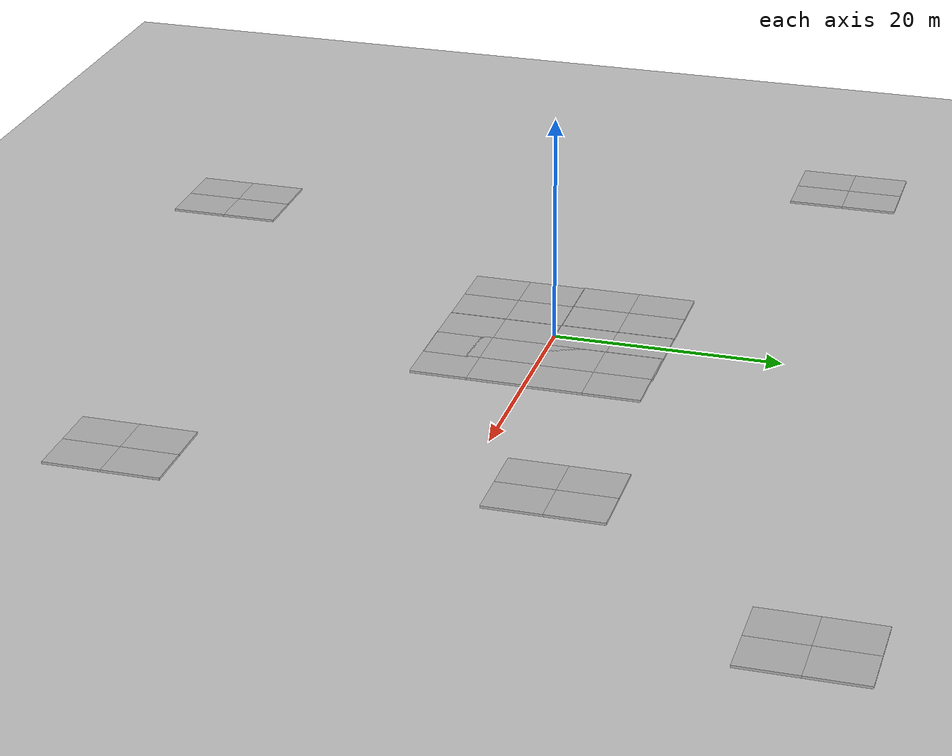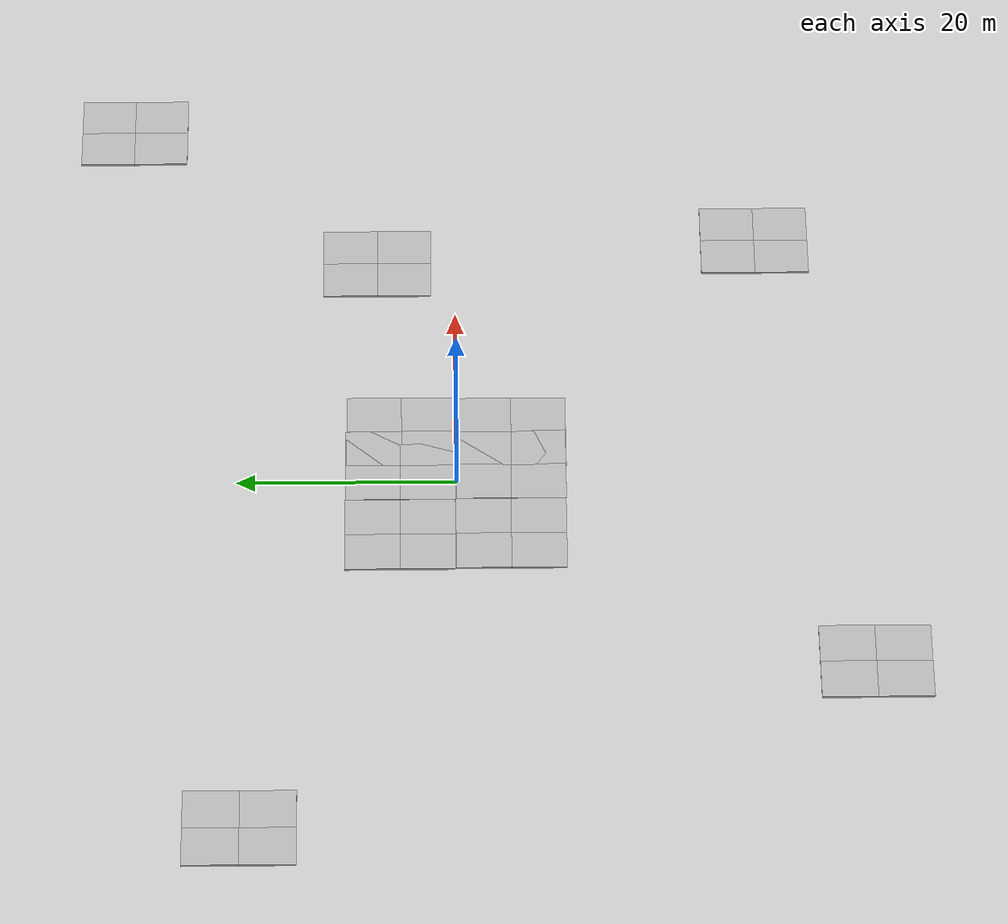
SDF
<sdf version="1.6">
 <world name="default">
  <light name="sun" type="directional">
   <pose>0 0 10 0 -0 0</pose>
   <diffuse>0.8 0.8 0.8 1</diffuse>
   <specular>0.2 0.2 0.2 1</specular>
   <attenuation>
    <range>1000</range>
    <constant>0.9</constant>
    <linear>0.01</linear>
    <quadratic>0.001</quadratic>
   </attenuation>
   <direction>-0.5 0.1 -0.9</direction>
  </light>
  <model name="ground_plane">
   <static>1</static>
   <link name="link">
    <collision name="collision">
     <geometry><plane><normal>0 0 1</normal><size>100 100</size></plane></geometry>
     <surface>
      <contact><collide_bitmask>65535</collide_bitmask></contact>
      <friction><ode><mu>100</mu><mu2>50</mu2></ode></friction>
     </surface>
    </collision>
    <visual name="visual">
     <cast_shadows>0</cast_shadows>
     <geometry><plane><normal>0 0 1</normal><size>100 100</size></plane></geometry>
     <material>
      <script><uri>file://media/materials/scripts/gazebo.material</uri><name>Gazebo/Grey</name></script>
     </material>
    </visual>
   </link>
  </model>
  <gravity>0 0 -9.8</gravity>
  <magnetic_field>6e-06 2.3e-05 -4.2e-05</magnetic_field>
  <atmosphere type="adiabatic"/>
  <physics name="default_physics" default="0" type="ode">
   <max_step_size>0.001</max_step_size>
   <real_time_factor>1</real_time_factor>
   <real_time_update_rate>1000</real_time_update_rate>
  </physics>
  <scene><ambient>0.4 0.4 0.4 1</ambient><background>0.7 0.7 0.7 1</background><shadows>0</shadows></scene>
  <audio><device>default</device></audio>
  <spherical_coordinates>
   <surface_model>EARTH_WGS84</surface_model>
   <latitude_deg>0</latitude_deg>
   <longitude_deg>0</longitude_deg>
   <elevation>0</elevation>
   <heading_deg>0</heading_deg>
  </spherical_coordinates>
  <model name="mud_box">
   <static>1</static>
   <link name="link">
    <collision name="collision"><geometry><box><size>8 10 0.2</size></box></geometry></collision>
    <visual name="visual_1">
     <pose>-2 2.5 0 0 -0 0</pose>
     <cast_shadows>0</cast_shadows>
     <geometry><box><size>4 5 0.2</size></box></geometry>
     <material>
      <script>
       <uri>model://mud_box/materials/scripts</uri>
       <uri>model://mud_box/materials/textures</uri>
       <name>vrc/mud</name>
      </script>
     </material>
    </visual>
    <visual name="visual_2">
     <pose>2 2.5 0 0 -0 0</pose>
     <cast_shadows>0</cast_shadows>
     <geometry><box><size>4 5 0.2</size></box></geometry>
     <material>
      <script>
       <uri>model://mud_box/materials/scripts</uri>
       <uri>model://mud_box/materials/textures</uri>
       <name>vrc/mud</name>
      </script>
     </material>
    </visual>
    <visual name="visual_3">
     <pose>2 -2.5 0 0 -0 0</pose>
     <cast_shadows>0</cast_shadows>
     <geometry><box><size>4 5 0.2</size></box></geometry>
     <material>
      <script>
       <uri>model://mud_box/materials/scripts</uri>
       <uri>model://mud_box/materials/textures</uri>
       <name>vrc/mud</name>
      </script>
     </material>
    </visual>
    <visual name="visual_4">
     <pose>-2 -2.5 0 0 -0 0</pose>
     <cast_shadows>0</cast_shadows>
     <geometry><box><size>4 5 0.2</size></box></geometry>
     <material>
      <script>
       <uri>model://mud_box/materials/scripts</uri>
       <uri>model://mud_box/materials/textures</uri>
       <name>vrc/mud</name>
      </script>
     </material>
    </visual>
   </link>
   <pose>-6.03693 -4.88899 0 0 -0 0</pose>
  </model>
  <model name="mud_box_0">
   <static>1</static>
   <link name="link">
    <collision name="collision"><geometry><box><size>8 10 0.2</size></box></geometry></collision>
    <visual name="visual_1">
     <pose>-2 2.5 0 0 -0 0</pose>
     <cast_shadows>0</cast_shadows>
     <geometry><box><size>4 5 0.2</size></box></geometry>
     <material>
      <script>
       <uri>model://mud_box/materials/scripts</uri>
       <uri>model://mud_box/materials/textures</uri>
       <name>vrc/mud</name>
      </script>
     </material>
    </visual>
    <visual name="visual_2">
     <pose>2 2.5 0 0 -0 0</pose>
     <cast_shadows>0</cast_shadows>
     <geometry><box><size>4 5 0.2</size></box></geometry>
     <material>
      <script>
       <uri>model://mud_box/materials/scripts</uri>
       <uri>model://mud_box/materials/textures</uri>
       <name>vrc/mud</name>
      </script>
     </material>
    </visual>
    <visual name="visual_3">
     <pose>2 -2.5 0 0 -0 0</pose>
     <cast_shadows>0</cast_shadows>
     <geometry><box><size>4 5 0.2</size></box></geometry>
     <material>
      <script>
       <uri>model://mud_box/materials/scripts</uri>
       <uri>model://mud_box/materials/textures</uri>
       <name>vrc/mud</name>
      </script>
     </material>
    </visual>
    <visual name="visual_4">
     <pose>-2 -2.5 0 0 -0 0</pose>
     <cast_shadows>0</cast_shadows>
     <geometry><box><size>4 5 0.2</size></box></geometry>
     <material>
      <script>
       <uri>model://mud_box/materials/scripts</uri>
       <uri>model://mud_box/materials/textures</uri>
       <name>vrc/mud</name>
      </script>
     </material>
    </visual>
   </link>
   <pose>-6.12223 5.16155 0 0 -0 0</pose>
  </model>
  <model name="mud_box_1">
   <static>1</static>
   <link name="link">
    <collision name="collision"><geometry><box><size>8 10 0.2</size></box></geometry></collision>
    <visual name="visual_1">
     <pose>-2 2.5 0 0 -0 0</pose>
     <cast_shadows>0</cast_shadows>
     <geometry><box><size>4 5 0.2</size></box></geometry>
     <material>
      <script>
       <uri>model://mud_box/materials/scripts</uri>
       <uri>model://mud_box/materials/textures</uri>
       <name>vrc/mud</name>
      </script>
     </material>
    </visual>
    <visual name="visual_2">
     <pose>2 2.5 0 0 -0 0</pose>
     <cast_shadows>0</cast_shadows>
     <geometry><box><size>4 5 0.2</size></box></geometry>
     <material>
      <script>
       <uri>model://mud_box/materials/scripts</uri>
       <uri>model://mud_box/materials/textures</uri>
       <name>vrc/mud</name>
      </script>
     </material>
    </visual>
    <visual name="visual_3">
     <pose>2 -2.5 0 0 -0 0</pose>
     <cast_shadows>0</cast_shadows>
     <geometry><box><size>4 5 0.2</size></box></geometry>
     <material>
      <script>
       <uri>model://mud_box/materials/scripts</uri>
       <uri>model://mud_box/materials/textures</uri>
       <name>vrc/mud</name>
      </script>
     </material>
    </visual>
    <visual name="visual_4">
     <pose>-2 -2.5 0 0 -0 0</pose>
     <cast_shadows>0</cast_shadows>
     <geometry><box><size>4 5 0.2</size></box></geometry>
     <material>
      <script>
       <uri>model://mud_box/materials/scripts</uri>
       <uri>model://mud_box/materials/textures</uri>
       <name>vrc/mud</name>
      </script>
     </material>
    </visual>
   </link>
   <pose>2.00613 -4.9342 0 0 -0 0</pose>
  </model>
  <model name="mud_box_2">
   <static>1</static>
   <link name="link">
    <collision name="collision"><geometry><box><size>8 10 0.2</size></box></geometry></collision>
    <visual name="visual_1">
     <pose>-2 2.5 0 0 -0 0</pose>
     <cast_shadows>0</cast_shadows>
     <geometry><box><size>4 5 0.2</size></box></geometry>
     <material>
      <script>
       <uri>model://mud_box/materials/scripts</uri>
       <uri>model://mud_box/materials/textures</uri>
       <name>vrc/mud</name>
      </script>
     </material>
    </visual>
    <visual name="visual_2">
     <pose>2 2.5 0 0 -0 0</pose>
     <cast_shadows>0</cast_shadows>
     <geometry><box><size>4 5 0.2</size></box></geometry>
     <material>
      <script>
       <uri>model://mud_box/materials/scripts</uri>
       <uri>model://mud_box/materials/textures</uri>
       <name>vrc/mud</name>
      </script>
     </material>
    </visual>
    <visual name="visual_3">
     <pose>2 -2.5 0 0 -0 0</pose>
     <cast_shadows>0</cast_shadows>
     <geometry><box><size>4 5 0.2</size></box></geometry>
     <material>
      <script>
       <uri>model://mud_box/materials/scripts</uri>
       <uri>model://mud_box/materials/textures</uri>
       <name>vrc/mud</name>
      </script>
     </material>
    </visual>
    <visual name="visual_4">
     <pose>-2 -2.5 0 0 -0 0</pose>
     <cast_shadows>0</cast_shadows>
     <geometry><box><size>4 5 0.2</size></box></geometry>
     <material>
      <script>
       <uri>model://mud_box/materials/scripts</uri>
       <uri>model://mud_box/materials/textures</uri>
       <name>vrc/mud</name>
      </script>
     </material>
    </visual>
   </link>
   <pose>1.92188 5.12437 0 0 -0 0</pose>
  </model>
  <model name="mud_box_4">
   <static>1</static>
   <link name="link">
    <collision name="collision"><geometry><box><size>8 10 0.2</size></box></geometry></collision>
    <visual name="visual_1">
     <pose>-2 2.5 0 0 -0 0</pose>
     <cast_shadows>0</cast_shadows>
     <geometry><box><size>4 5 0.2</size></box></geometry>
     <material>
      <script>
       <uri>model://mud_box/materials/scripts</uri>
       <uri>model://mud_box/materials/textures</uri>
       <name>vrc/mud</name>
      </script>
     </material>
    </visual>
    <visual name="visual_2">
     <pose>2 2.5 0 0 -0 0</pose>
     <cast_shadows>0</cast_shadows>
     <geometry><box><size>4 5 0.2</size></box></geometry>
     <material>
      <script>
       <uri>model://mud_box/materials/scripts</uri>
       <uri>model://mud_box/materials/textures</uri>
       <name>vrc/mud</name>
      </script>
     </material>
    </visual>
    <visual name="visual_3">
     <pose>2 -2.5 0 0 -0 0</pose>
     <cast_shadows>0</cast_shadows>
     <geometry><box><size>4 5 0.2</size></box></geometry>
     <material>
      <script>
       <uri>model://mud_box/materials/scripts</uri>
       <uri>model://mud_box/materials/textures</uri>
       <name>vrc/mud</name>
      </script>
     </material>
    </visual>
    <visual name="visual_4">
     <pose>-2 -2.5 0 0 -0 0</pose>
     <cast_shadows>0</cast_shadows>
     <geometry><box><size>4 5 0.2</size></box></geometry>
     <material>
      <script>
       <uri>model://mud_box/materials/scripts</uri>
       <uri>model://mud_box/materials/textures</uri>
       <name>vrc/mud</name>
      </script>
     </material>
    </visual>
   </link>
   <pose>5.96802 5.03122 0 0 -0 0</pose>
  </model>
  <model name="mud_box_3">
   <static>1</static>
   <link name="link">
    <collision name="collision"><geometry><box><size>8 10 0.2</size></box></geometry></collision>
    <visual name="visual_1">
     <pose>-2 2.5 0 0 -0 0</pose>
     <cast_shadows>0</cast_shadows>
     <geometry><box><size>4 5 0.2</size></box></geometry>
     <material>
      <script>
       <uri>model://mud_box/materials/scripts</uri>
       <uri>model://mud_box/materials/textures</uri>
       <name>vrc/mud</name>
      </script>
     </material>
    </visual>
    <visual name="visual_2">
     <pose>2 2.5 0 0 -0 0</pose>
     <cast_shadows>0</cast_shadows>
     <geometry><box><size>4 5 0.2</size></box></geometry>
     <material>
      <script>
       <uri>model://mud_box/materials/scripts</uri>
       <uri>model://mud_box/materials/textures</uri>
       <name>vrc/mud</name>
      </script>
     </material>
    </visual>
    <visual name="visual_3">
     <pose>2 -2.5 0 0 -0 0</pose>
     <cast_shadows>0</cast_shadows>
     <geometry><box><size>4 5 0.2</size></box></geometry>
     <material>
      <script>
       <uri>model://mud_box/materials/scripts</uri>
       <uri>model://mud_box/materials/textures</uri>
       <name>vrc/mud</name>
      </script>
     </material>
    </visual>
    <visual name="visual_4">
     <pose>-2 -2.5 0 0 -0 0</pose>
     <cast_shadows>0</cast_shadows>
     <geometry><box><size>4 5 0.2</size></box></geometry>
     <material>
      <script>
       <uri>model://mud_box/materials/scripts</uri>
       <uri>model://mud_box/materials/textures</uri>
       <name>vrc/mud</name>
      </script>
     </material>
    </visual>
   </link>
   <pose>5.85818 -4.97903 0 0 -0 0</pose>
  </model>
  <model name="mud_box_5">
   <static>1</static>
   <link name="link">
    <collision name="collision"><geometry><box><size>8 10 0.2</size></box></geometry></collision>
    <visual name="visual_1">
     <pose>-2 2.5 0 0 -0 0</pose>
     <cast_shadows>0</cast_shadows>
     <geometry><box><size>4 5 0.2</size></box></geometry>
     <material>
      <script>
       <uri>model://mud_box/materials/scripts</uri>
       <uri>model://mud_box/materials/textures</uri>
       <name>vrc/mud</name>
      </script>
     </material>
    </visual>
    <visual name="visual_2">
     <pose>2 2.5 0 0 -0 0</pose>
     <cast_shadows>0</cast_shadows>
     <geometry><box><size>4 5 0.2</size></box></geometry>
     <material>
      <script>
       <uri>model://mud_box/materials/scripts</uri>
       <uri>model://mud_box/materials/textures</uri>
       <name>vrc/mud</name>
      </script>
     </material>
    </visual>
    <visual name="visual_3">
     <pose>2 -2.5 0 0 -0 0</pose>
     <cast_shadows>0</cast_shadows>
     <geometry><box><size>4 5 0.2</size></box></geometry>
     <material>
      <script>
       <uri>model://mud_box/materials/scripts</uri>
       <uri>model://mud_box/materials/textures</uri>
       <name>vrc/mud</name>
      </script>
     </material>
    </visual>
    <visual name="visual_4">
     <pose>-2 -2.5 0 0 -0 0</pose>
     <cast_shadows>0</cast_shadows>
     <geometry><box><size>4 5 0.2</size></box></geometry>
     <material>
      <script>
       <uri>model://mud_box/materials/scripts</uri>
       <uri>model://mud_box/materials/textures</uri>
       <name>vrc/mud</name>
      </script>
     </material>
    </visual>
   </link>
   <pose>-20.9849 -37.1208 0 0 -0 0</pose>
  </model>
  <model name="mud_box_6">
   <static>1</static>
   <link name="link">
    <collision name="collision"><geometry><box><size>8 10 0.2</size></box></geometry></collision>
    <visual name="visual_1">
     <pose>-2 2.5 0 0 -0 0</pose>
     <cast_shadows>0</cast_shadows>
     <geometry><box><size>4 5 0.2</size></box></geometry>
     <material>
      <script>
       <uri>model://mud_box/materials/scripts</uri>
       <uri>model://mud_box/materials/textures</uri>
       <name>vrc/mud</name>
      </script>
     </material>
    </visual>
    <visual name="visual_2">
     <pose>2 2.5 0 0 -0 0</pose>
     <cast_shadows>0</cast_shadows>
     <geometry><box><size>4 5 0.2</size></box></geometry>
     <material>
      <script>
       <uri>model://mud_box/materials/scripts</uri>
       <uri>model://mud_box/materials/textures</uri>
       <name>vrc/mud</name>
      </script>
     </material>
    </visual>
    <visual name="visual_3">
     <pose>2 -2.5 0 0 -0 0</pose>
     <cast_shadows>0</cast_shadows>
     <geometry><box><size>4 5 0.2</size></box></geometry>
     <material>
      <script>
       <uri>model://mud_box/materials/scripts</uri>
       <uri>model://mud_box/materials/textures</uri>
       <name>vrc/mud</name>
      </script>
     </material>
    </visual>
    <visual name="visual_4">
     <pose>-2 -2.5 0 0 -0 0</pose>
     <cast_shadows>0</cast_shadows>
     <geometry><box><size>4 5 0.2</size></box></geometry>
     <material>
      <script>
       <uri>model://mud_box/materials/scripts</uri>
       <uri>model://mud_box/materials/textures</uri>
       <name>vrc/mud</name>
      </script>
     </material>
    </visual>
   </link>
   <pose>-38.769 19.2047 0 0 -0 0</pose>
  </model>
  <model name="mud_box_7">
   <static>1</static>
   <link name="link">
    <collision name="collision"><geometry><box><size>8 10 0.2</size></box></geometry></collision>
    <visual name="visual_1">
     <pose>-2 2.5 0 0 -0 0</pose>
     <cast_shadows>0</cast_shadows>
     <geometry><box><size>4 5 0.2</size></box></geometry>
     <material>
      <script>
       <uri>model://mud_box/materials/scripts</uri>
       <uri>model://mud_box/materials/textures</uri>
       <name>vrc/mud</name>
      </script>
     </material>
    </visual>
    <visual name="visual_2">
     <pose>2 2.5 0 0 -0 0</pose>
     <cast_shadows>0</cast_shadows>
     <geometry><box><size>4 5 0.2</size></box></geometry>
     <material>
      <script>
       <uri>model://mud_box/materials/scripts</uri>
       <uri>model://mud_box/materials/textures</uri>
       <name>vrc/mud</name>
      </script>
     </material>
    </visual>
    <visual name="visual_3">
     <pose>2 -2.5 0 0 -0 0</pose>
     <cast_shadows>0</cast_shadows>
     <geometry><box><size>4 5 0.2</size></box></geometry>
     <material>
      <script>
       <uri>model://mud_box/materials/scripts</uri>
       <uri>model://mud_box/materials/textures</uri>
       <name>vrc/mud</name>
      </script>
     </material>
    </visual>
    <visual name="visual_4">
     <pose>-2 -2.5 0 0 -0 0</pose>
     <cast_shadows>0</cast_shadows>
     <geometry><box><size>4 5 0.2</size></box></geometry>
     <material>
      <script>
       <uri>model://mud_box/materials/scripts</uri>
       <uri>model://mud_box/materials/textures</uri>
       <name>vrc/mud</name>
      </script>
     </material>
    </visual>
   </link>
   <pose>26.4414 7.25929 0 0 -0 0</pose>
  </model>
  <model name="mud_box_8">
   <static>1</static>
   <link name="link">
    <collision name="collision"><geometry><box><size>8 10 0.2</size></box></geometry></collision>
    <visual name="visual_1">
     <pose>-2 2.5 0 0 -0 0</pose>
     <cast_shadows>0</cast_shadows>
     <geometry><box><size>4 5 0.2</size></box></geometry>
     <material>
      <script>
       <uri>model://mud_box/materials/scripts</uri>
       <uri>model://mud_box/materials/textures</uri>
       <name>vrc/mud</name>
      </script>
     </material>
    </visual>
    <visual name="visual_2">
     <pose>2 2.5 0 0 -0 0</pose>
     <cast_shadows>0</cast_shadows>
     <geometry><box><size>4 5 0.2</size></box></geometry>
     <material>
      <script>
       <uri>model://mud_box/materials/scripts</uri>
       <uri>model://mud_box/materials/textures</uri>
       <name>vrc/mud</name>
      </script>
     </material>
    </visual>
    <visual name="visual_3">
     <pose>2 -2.5 0 0 -0 0</pose>
     <cast_shadows>0</cast_shadows>
     <geometry><box><size>4 5 0.2</size></box></geometry>
     <material>
      <script>
       <uri>model://mud_box/materials/scripts</uri>
       <uri>model://mud_box/materials/textures</uri>
       <name>vrc/mud</name>
      </script>
     </material>
    </visual>
    <visual name="visual_4">
     <pose>-2 -2.5 0 0 -0 0</pose>
     <cast_shadows>0</cast_shadows>
     <geometry><box><size>4 5 0.2</size></box></geometry>
     <material>
      <script>
       <uri>model://mud_box/materials/scripts</uri>
       <uri>model://mud_box/materials/textures</uri>
       <name>vrc/mud</name>
      </script>
     </material>
    </visual>
   </link>
   <pose>28.9982 -28.0194 0 0 -0 0</pose>
  </model>
  <model name="mud_box_9">
   <static>1</static>
   <link name="link">
    <collision name="collision"><geometry><box><size>8 10 0.2</size></box></geometry></collision>
    <visual name="visual_1">
     <pose>-2 2.5 0 0 -0 0</pose>
     <cast_shadows>0</cast_shadows>
     <geometry><box><size>4 5 0.2</size></box></geometry>
     <material>
      <script>
       <uri>model://mud_box/materials/scripts</uri>
       <uri>model://mud_box/materials/textures</uri>
       <name>vrc/mud</name>
      </script>
     </material>
    </visual>
    <visual name="visual_2">
     <pose>2 2.5 0 0 -0 0</pose>
     <cast_shadows>0</cast_shadows>
     <geometry><box><size>4 5 0.2</size></box></geometry>
     <material>
      <script>
       <uri>model://mud_box/materials/scripts</uri>
       <uri>model://mud_box/materials/textures</uri>
       <name>vrc/mud</name>
      </script>
     </material>
    </visual>
    <visual name="visual_3">
     <pose>2 -2.5 0 0 -0 0</pose>
     <cast_shadows>0</cast_shadows>
     <geometry><box><size>4 5 0.2</size></box></geometry>
     <material>
      <script>
       <uri>model://mud_box/materials/scripts</uri>
       <uri>model://mud_box/materials/textures</uri>
       <name>vrc/mud</name>
      </script>
     </material>
    </visual>
    <visual name="visual_4">
     <pose>-2 -2.5 0 0 -0 0</pose>
     <cast_shadows>0</cast_shadows>
     <geometry><box><size>4 5 0.2</size></box></geometry>
     <material>
      <script>
       <uri>model://mud_box/materials/scripts</uri>
       <uri>model://mud_box/materials/textures</uri>
       <name>vrc/mud</name>
      </script>
     </material>
    </visual>
   </link>
   <pose>43.2298 30.2938 0 0 -0 0</pose>
  </model>
 </world>
</sdf>
